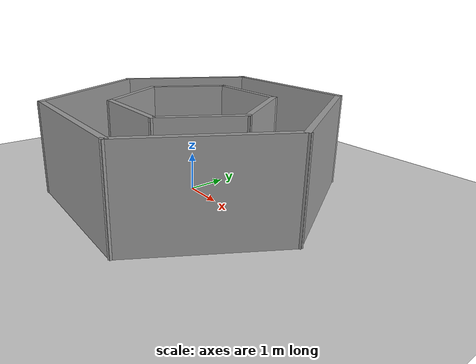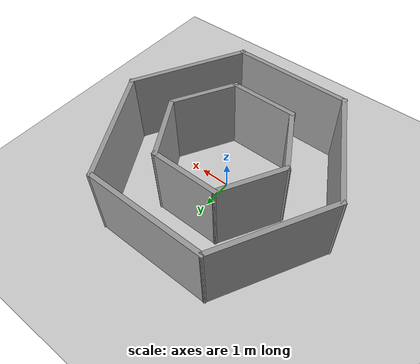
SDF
<sdf version="1.7">
 <world name="default">
  <light name="sun" type="directional">
   <pose>0 0 10 0 -0 0</pose>
   <diffuse>0.8 0.8 0.8 1</diffuse>
   <specular>0.2 0.2 0.2 1</specular>
   <attenuation>
    <range>1000</range>
    <constant>0.9</constant>
    <linear>0.01</linear>
    <quadratic>0.001</quadratic>
   </attenuation>
   <direction>-0.5 0.1 -0.9</direction>
   <spot><inner_angle>0</inner_angle><outer_angle>0</outer_angle><falloff>0</falloff></spot>
  </light>
  <model name="ground_plane">
   <static>1</static>
   <link name="link">
    <collision name="collision">
     <geometry><plane><normal>0 0 1</normal><size>100 100</size></plane></geometry>
     <surface>
      <contact><collide_bitmask>65535</collide_bitmask></contact>
      <friction><ode><mu>100</mu><mu2>50</mu2></ode></friction>
     </surface>
    </collision>
    <visual name="visual">
     <cast_shadows>0</cast_shadows>
     <geometry><plane><normal>0 0 1</normal><size>100 100</size></plane></geometry>
     <material>
      <script><uri>file://media/materials/scripts/gazebo.material</uri><name>Gazebo/Grey</name></script>
     </material>
    </visual>
   </link>
  </model>
  <gravity>0 0 -9.8</gravity>
  <magnetic_field>6e-06 2.3e-05 -4.2e-05</magnetic_field>
  <atmosphere type="adiabatic"/>
  <physics type="ode">
   <max_step_size>0.001</max_step_size>
   <real_time_factor>1</real_time_factor>
   <real_time_update_rate>1000</real_time_update_rate>
  </physics>
  <scene><ambient>0.4 0.4 0.4 1</ambient><background>0.7 0.7 0.7 1</background><shadows>1</shadows></scene>
  <audio><device>default</device></audio>
  <spherical_coordinates>
   <surface_model>EARTH_WGS84</surface_model>
   <latitude_deg>0</latitude_deg>
   <longitude_deg>0</longitude_deg>
   <elevation>0</elevation>
   <heading_deg>0</heading_deg>
  </spherical_coordinates>
  <model name="hexgonal_track">
   <pose>-0.053979 0.678664 0 0 -0 0</pose>
   <link name="Wall_100">
    <collision name="Wall_100_Collision">
     <geometry><box><size>3.97688 0.15 2.5</size></box></geometry>
     <pose>0 0 1.25 0 -0 0</pose>
    </collision>
    <visual name="Wall_100_Visual">
     <pose>0 0 1.25 0 -0 0</pose>
     <geometry><box><size>3.97688 0.15 2.5</size></box></geometry>
     <material>
      <script><uri>file://media/materials/scripts/gazebo.material</uri><name>Gazebo/Grey</name></script>
      <ambient>1 1 1 1</ambient>
     </material>
     <meta><layer>0</layer></meta>
    </visual>
    <pose>2.85 1.10139 0 0 -0 2.07536</pose>
   </link>
   <link name="Wall_102">
    <collision name="Wall_102_Collision">
     <geometry><box><size>3.97688 0.15 2.5</size></box></geometry>
     <pose>0 0 1.25 0 -0 0</pose>
    </collision>
    <visual name="Wall_102_Visual">
     <pose>0 0 1.25 0 -0 0</pose>
     <geometry><box><size>3.97688 0.15 2.5</size></box></geometry>
     <material>
      <script><uri>file://media/materials/scripts/gazebo.material</uri><name>Gazebo/Grey</name></script>
      <ambient>1 1 1 1</ambient>
     </material>
     <meta><layer>0</layer></meta>
    </visual>
    <pose>2.85 -2.24861 0 0 -0 -2.07536</pose>
   </link>
   <link name="Wall_119">
    <collision name="Wall_119_Collision">
     <geometry><box><size>2.25 0.15 2.5</size></box></geometry>
     <pose>0 0 1.25 0 -0 0</pose>
    </collision>
    <visual name="Wall_119_Visual">
     <pose>0 0 1.25 0 -0 0</pose>
     <geometry><box><size>2.25 0.15 2.5</size></box></geometry>
     <material>
      <script><uri>file://media/materials/scripts/gazebo.material</uri><name>Gazebo/Grey</name></script>
      <ambient>1 1 1 1</ambient>
     </material>
     <meta><layer>0</layer></meta>
    </visual>
    <pose>0.049381 1.18208 0 0 -0 0</pose>
   </link>
   <link name="Wall_120">
    <collision name="Wall_120_Collision">
     <geometry><box><size>2.25 0.15 2.5</size></box></geometry>
     <pose>0 0 1.25 0 -0 0</pose>
    </collision>
    <visual name="Wall_120_Visual">
     <pose>0 0 1.25 0 -0 0</pose>
     <geometry><box><size>2.25 0.15 2.5</size></box></geometry>
     <material>
      <script><uri>file://media/materials/scripts/gazebo.material</uri><name>Gazebo/Grey</name></script>
      <ambient>1 1 1 1</ambient>
     </material>
     <meta><layer>0</layer></meta>
    </visual>
    <pose>1.62438 0.272753 0 0 -0 -1.0472</pose>
   </link>
   <link name="Wall_121">
    <collision name="Wall_121_Collision">
     <geometry><box><size>2.25 0.15 2.5</size></box></geometry>
     <pose>0 0 1.25 0 -0 0</pose>
    </collision>
    <visual name="Wall_121_Visual">
     <pose>0 0 1.25 0 -0 0</pose>
     <geometry><box><size>2.25 0.15 2.5</size></box></geometry>
     <material>
      <script><uri>file://media/materials/scripts/gazebo.material</uri><name>Gazebo/Grey</name></script>
      <ambient>1 1 1 1</ambient>
     </material>
     <meta><layer>0</layer></meta>
    </visual>
    <pose>1.62438 -1.5459 0 0 -0 -2.0944</pose>
   </link>
   <link name="Wall_122">
    <collision name="Wall_122_Collision">
     <geometry><box><size>2.25 0.15 2.5</size></box></geometry>
     <pose>0 0 1.25 0 -0 0</pose>
    </collision>
    <visual name="Wall_122_Visual">
     <pose>0 0 1.25 0 -0 0</pose>
     <geometry><box><size>2.25 0.15 2.5</size></box></geometry>
     <material>
      <script><uri>file://media/materials/scripts/gazebo.material</uri><name>Gazebo/Grey</name></script>
      <ambient>1 1 1 1</ambient>
     </material>
     <meta><layer>0</layer></meta>
    </visual>
    <pose>0.049381 -2.45523 0 0 -0 3.14159</pose>
   </link>
   <link name="Wall_123">
    <collision name="Wall_123_Collision">
     <geometry><box><size>2.25 0.15 2.5</size></box></geometry>
     <pose>0 0 1.25 0 -0 0</pose>
    </collision>
    <visual name="Wall_123_Visual">
     <pose>0 0 1.25 0 -0 0</pose>
     <geometry><box><size>2.25 0.15 2.5</size></box></geometry>
     <material>
      <script><uri>file://media/materials/scripts/gazebo.material</uri><name>Gazebo/Grey</name></script>
      <ambient>1 1 1 1</ambient>
     </material>
     <meta><layer>0</layer></meta>
    </visual>
    <pose>-1.52562 -1.5459 0 0 -0 2.0944</pose>
   </link>
   <link name="Wall_124">
    <collision name="Wall_124_Collision">
     <geometry><box><size>2.25 0.15 2.5</size></box></geometry>
     <pose>0 0 1.25 0 -0 0</pose>
    </collision>
    <visual name="Wall_124_Visual">
     <pose>0 0 1.25 0 -0 0</pose>
     <geometry><box><size>2.25 0.15 2.5</size></box></geometry>
     <material>
      <script><uri>file://media/materials/scripts/gazebo.material</uri><name>Gazebo/Grey</name></script>
      <ambient>1 1 1 1</ambient>
     </material>
     <meta><layer>0</layer></meta>
    </visual>
    <pose>-1.52562 0.272753 0 0 -0 1.0472</pose>
   </link>
   <link name="Wall_86">
    <collision name="Wall_86_Collision">
     <geometry><box><size>4 0.15 2.5</size></box></geometry>
     <pose>0 0 1.25 0 -0 0</pose>
    </collision>
    <visual name="Wall_86_Visual">
     <pose>0 0 1.25 0 -0 0</pose>
     <geometry><box><size>4 0.15 2.5</size></box></geometry>
     <material>
      <script><uri>file://media/materials/scripts/gazebo.material</uri><name>Gazebo/Grey</name></script>
      <ambient>1 1 1 1</ambient>
     </material>
     <meta><layer>0</layer></meta>
    </visual>
    <pose>-0 2.77639 0 0 -0 3.14159</pose>
   </link>
   <link name="Wall_89">
    <collision name="Wall_89_Collision">
     <geometry><box><size>3.97688 0.15 2.5</size></box></geometry>
     <pose>0 0 1.25 0 -0 0</pose>
    </collision>
    <visual name="Wall_89_Visual">
     <pose>0 0 1.25 0 -0 0</pose>
     <geometry><box><size>3.97688 0.15 2.5</size></box></geometry>
     <material>
      <script><uri>file://media/materials/scripts/gazebo.material</uri><name>Gazebo/Grey</name></script>
      <ambient>1 1 1 1</ambient>
     </material>
     <meta><layer>0</layer></meta>
    </visual>
    <pose>-2.85 1.10139 0 0 -0 1.06624</pose>
   </link>
   <link name="Wall_93">
    <collision name="Wall_93_Collision">
     <geometry><box><size>3.97688 0.15 2.5</size></box></geometry>
     <pose>0 0 1.25 0 -0 0</pose>
    </collision>
    <visual name="Wall_93_Visual">
     <pose>0 0 1.25 0 -0 0</pose>
     <geometry><box><size>3.97688 0.15 2.5</size></box></geometry>
     <material>
      <script><uri>file://media/materials/scripts/gazebo.material</uri><name>Gazebo/Grey</name></script>
      <ambient>1 1 1 1</ambient>
     </material>
     <meta><layer>0</layer></meta>
    </visual>
    <pose>-2.85 -2.24861 0 0 -0 2.07536</pose>
   </link>
   <link name="Wall_95">
    <collision name="Wall_95_Collision">
     <geometry><box><size>4 0.15 2.5</size></box></geometry>
     <pose>0 0 1.25 0 -0 0</pose>
    </collision>
    <visual name="Wall_95_Visual">
     <pose>0 0 1.25 0 -0 0</pose>
     <geometry><box><size>4 0.15 2.5</size></box></geometry>
     <material>
      <script><uri>file://media/materials/scripts/gazebo.material</uri><name>Gazebo/Grey</name></script>
      <ambient>1 1 1 1</ambient>
     </material>
     <meta><layer>0</layer></meta>
    </visual>
    <pose>-0 -3.92361 0 0 -0 0</pose>
   </link>
   <static>1</static>
  </model>
 </world>
</sdf>
